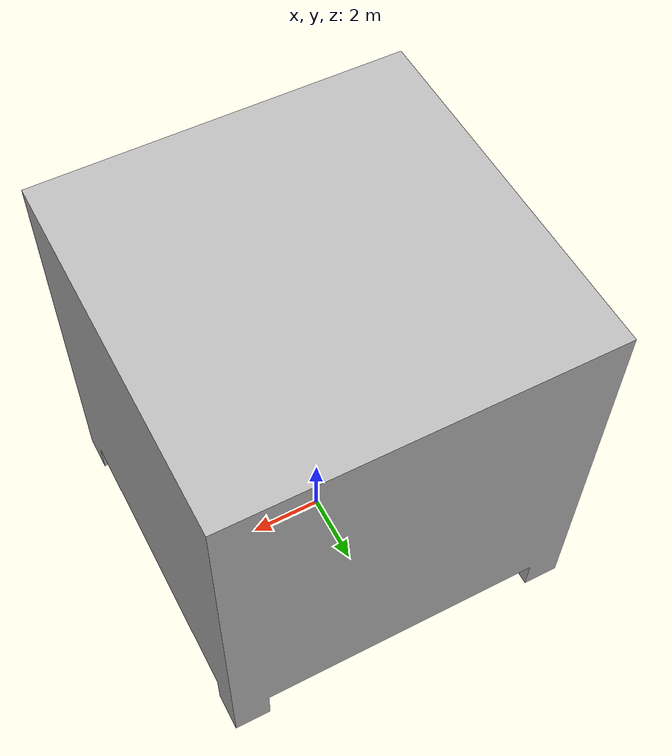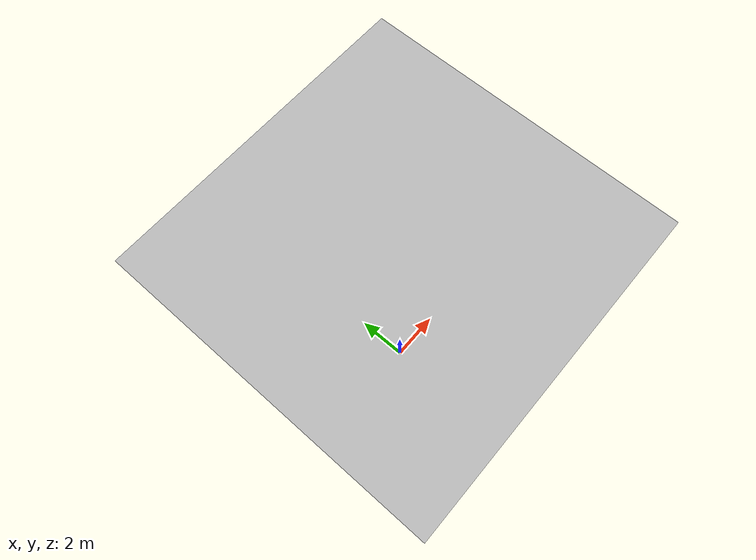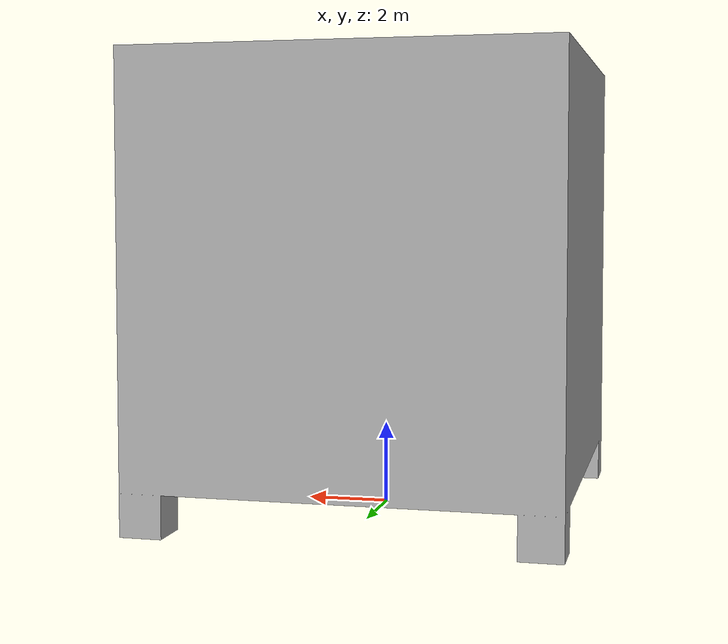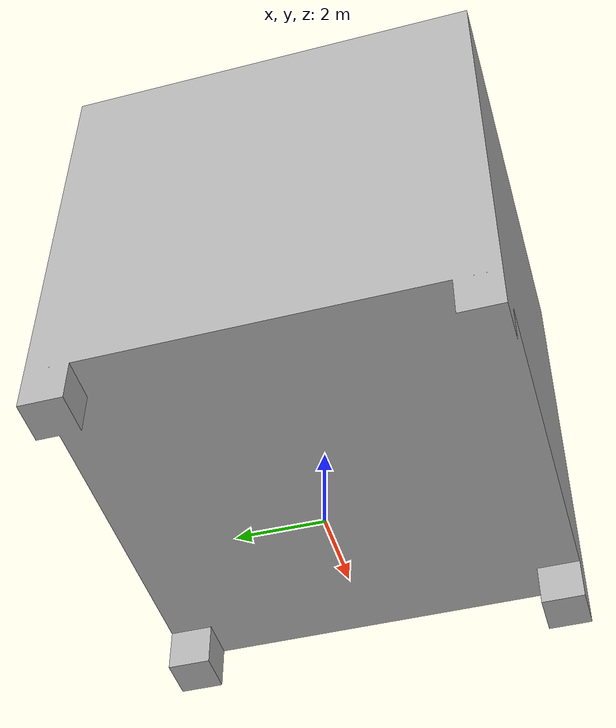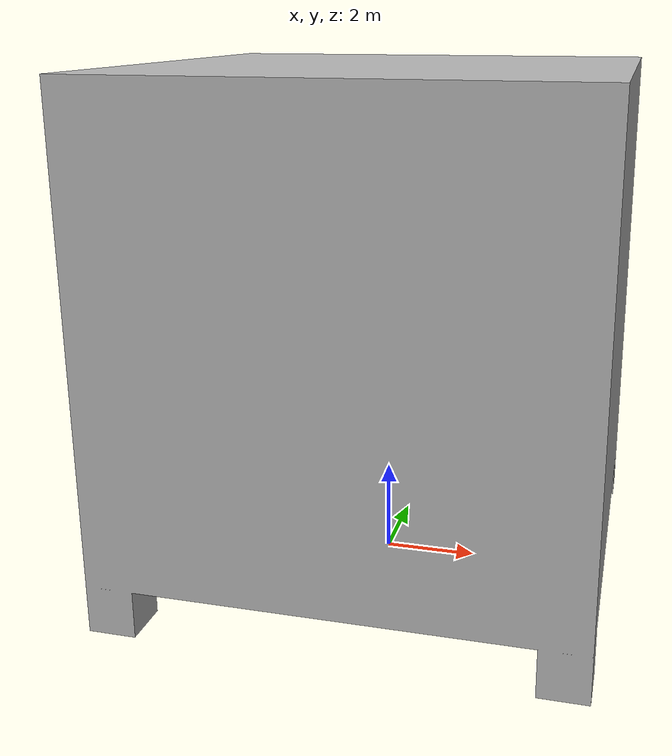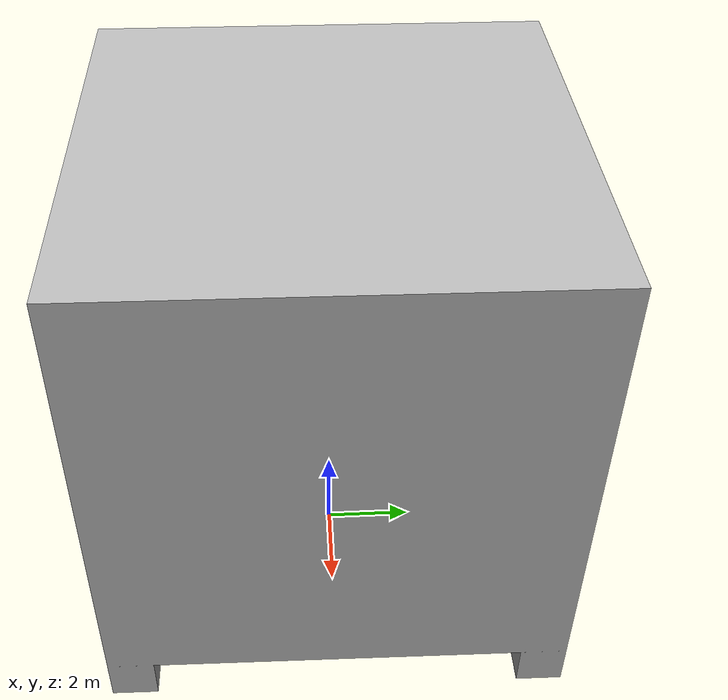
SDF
<?xml version="1.0" ?>
<sdf version="1.5">
  <model name="tower3">
    <link name="link">
      <collision name="collision">
        <geometry>
          <mesh>
            <uri>model://tower3/meshes/tower3.dae</uri>
          </mesh>
        </geometry>
      </collision>
      <visual name="visual">
        <geometry>
          <mesh>
            <uri>model://tower3/meshes/tower3.dae</uri>
          </mesh>
        </geometry>
      </visual>
    </link>
  </model>
</sdf>
